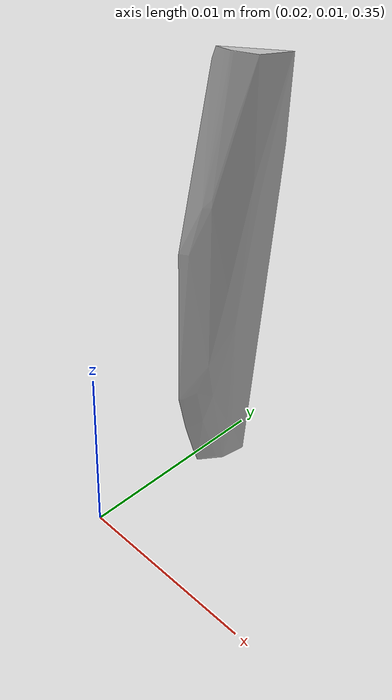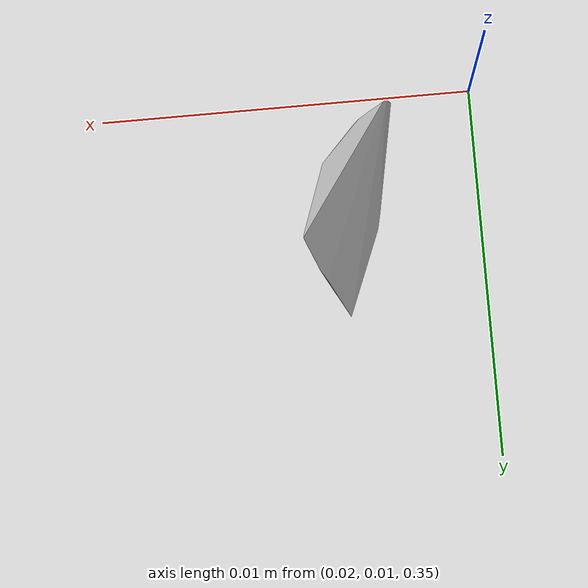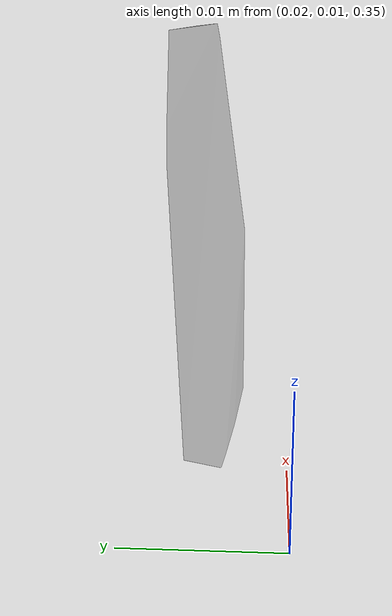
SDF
<?xml version="1.0"?>
<sdf version="1.7">
  <model name="vascular_partexport035">
    <link name="vascular_partexport035_body">
      <visual name="vascular_partexport035_visual">
        <geometry>
          <mesh>
            <uri>vascular_partexport035.obj</uri>
          </mesh>
        </geometry>
      </visual>
      <collision name="vascular_partexport035_collision">
        <geometry>
          <mesh>
            <uri>vascular_partexport035.obj</uri>
          </mesh>
        </geometry>
      </collision>
    </link>
    <frame name="vascular_partexport035_center">
      <pose relative_to="vascular_partexport035_body">0 0 0 0 0 0</pose>
    </frame>
  </model>
</sdf>
